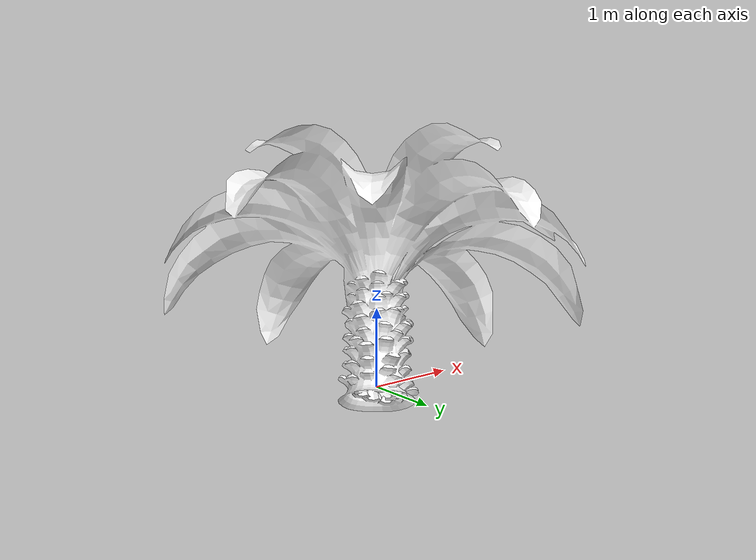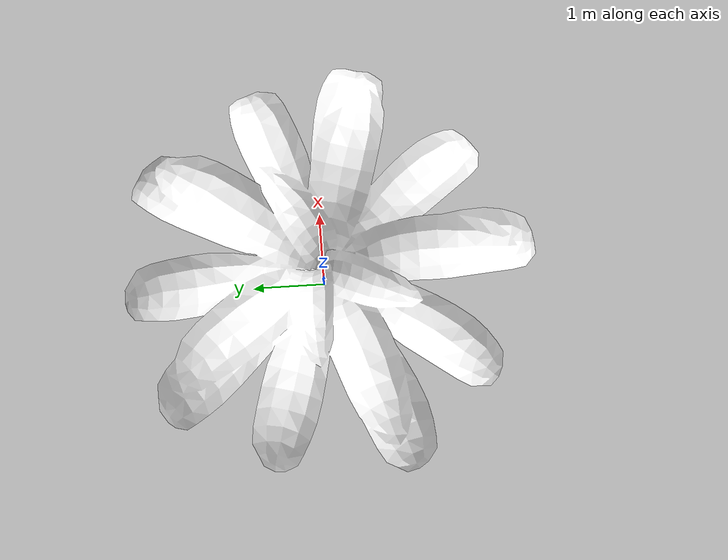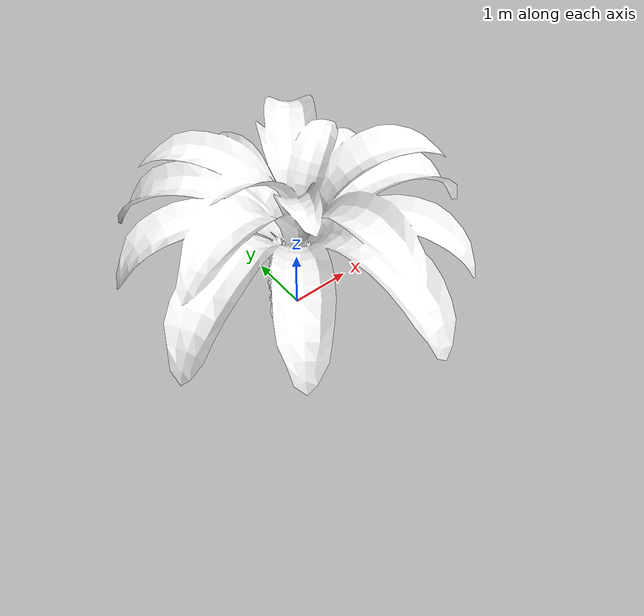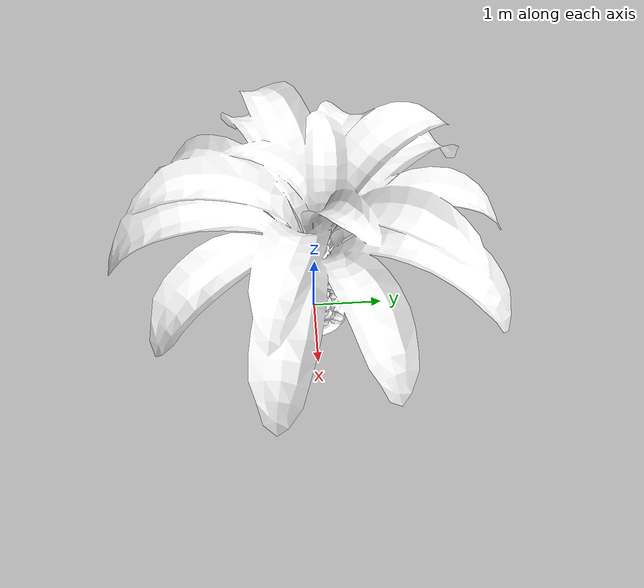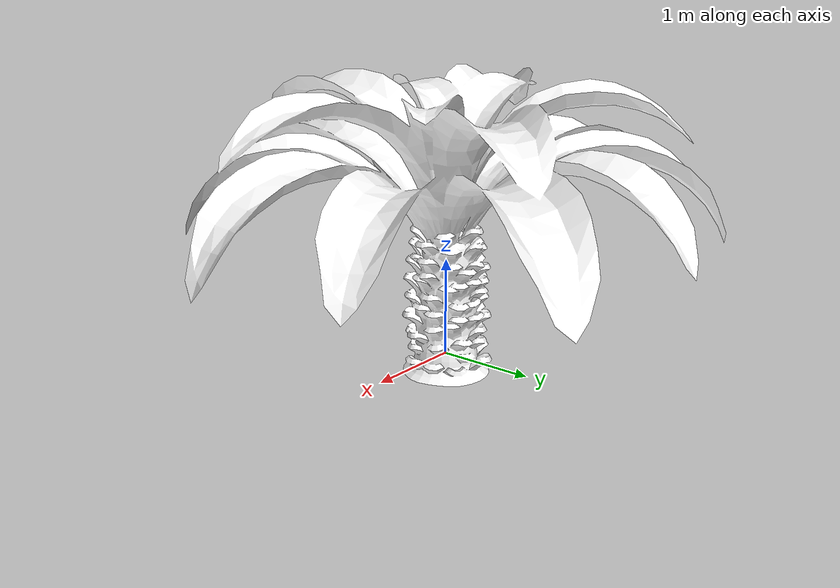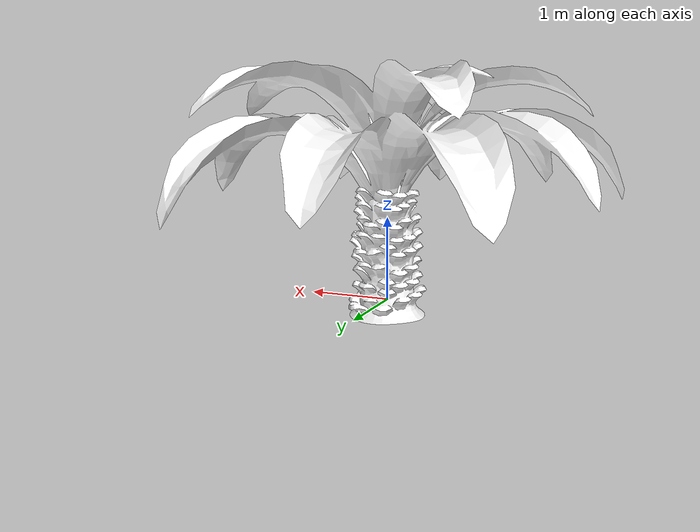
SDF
<?xml version="1.0" ?>
<sdf version="1.9">
  <model name="sawit_sedeng">
    <static>true</static>
    <link name="link">
      <collision name="collision">
        <geometry>
          <mesh>
            <uri>model://sawit_sedeng/Sawitsedeng.dae</uri>
            <scale>1 1 1</scale>
          </mesh>
        </geometry>
      </collision>
      <visual name="visual">
        <geometry>
          <mesh>
            <uri>model://sawit_sedeng/Sawitsedeng.dae</uri>
            <scale>1 1 1</scale>
          </mesh>
        </geometry>
        <material>
          <diffuse>1.0 1.0 1.0 1.0</diffuse>
          <specular>0.5 0.5 0.5 1.0</specular>
          <pbr>
            <metal>
              <albedo_map>model://sawit_sedeng/Image_0.png</albedo_map>
            </metal>
          </pbr>
          <blend_mode>add</blend_mode>
          <alpha_reject>0.5</alpha_reject>
        </material>
      </visual>
    </link>
  </model>
</sdf>
